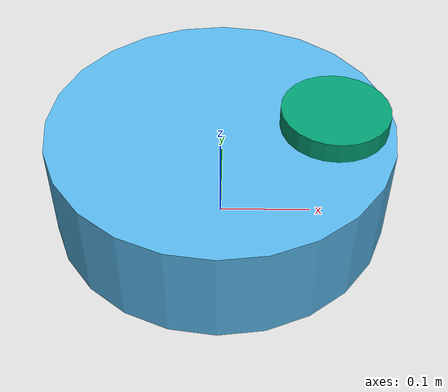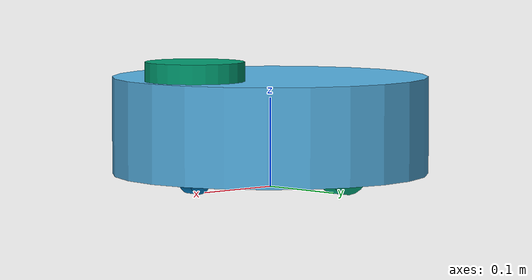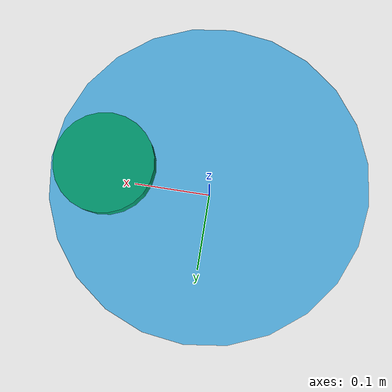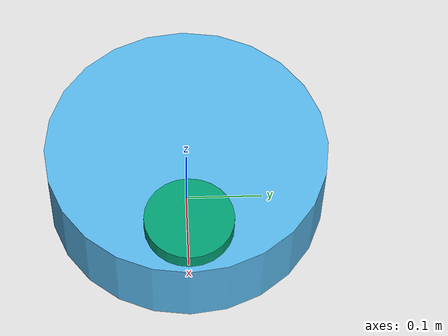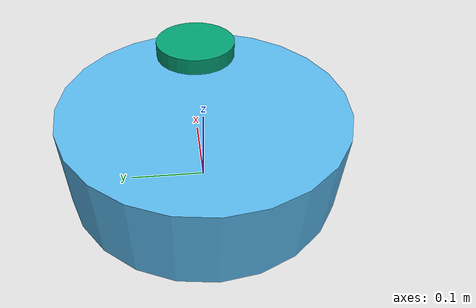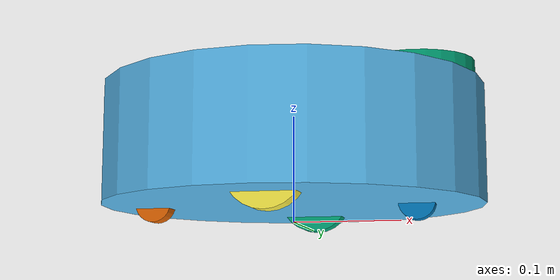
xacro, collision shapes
<?xml version="1.0"?>
<robot name="kobuki_standalone"
       xmlns:sensor="http://playerstage.sourceforge.net/gazebo/xmlschema/#sensor"
       xmlns:controller="http://playerstage.sourceforge.net/gazebo/xmlschema/#controller"
       xmlns:interface="http://playerstage.sourceforge.net/gazebo/xmlschema/#interface"
       xmlns:xacro="http://ros.org/wiki/xacro">

  <!-- Defines the kobuki component tag. -->
  <xacro:include filename="$(find multi_robot_scenario)/launch/includes/urdf/kobuki.urdf.xacro" />
  <kobuki/>
</robot>

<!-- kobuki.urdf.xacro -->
<robot name="kobuki" xmlns:xacro="http://ros.org/wiki/xacro">
  <xacro:include filename="$(find multi_robot_scenario)/launch/includes/urdf/common_properties.urdf.xacro"/>
  <xacro:include filename="$(find multi_robot_scenario)/launch/includes/urdf/kobuki_gazebo.urdf.xacro"/>

  <!-- Kobuki -->
  <xacro:macro name="kobuki">
    <link name="base_footprint"/>
    <joint name="base_joint" type="fixed">
      <origin xyz="0 0 0.0102" rpy="0 0 0" />
      <parent link="base_footprint"/>
      <child link="base_link" />
    </joint>
    <link name="base_link">
      <visual>
        <geometry>
          <!-- new mesh -->
          <mesh filename="package://multi_robot_scenario/launch/includes/meshes/main_body.dae" />
        </geometry>
        <origin xyz="0.001 0 0.05199" rpy="0 0 0"/>
      </visual>
      <collision>
        <geometry>
          <cylinder length="0.10938" radius="0.178"/>
        </geometry>
        <surface>
          <contact>
            <ode/>
          </contact>
          <friction>
            <ode/>
          </friction>
        </surface>
        <origin xyz="0.0 0 0.05949" rpy="0 0 0"/>
      </collision>
      <inertial>
        <!-- COM experimentally determined -->
        <origin xyz="0.01 0 0"/>
        <mass value="2.4"/> <!-- 2.4/2.6 kg for small/big battery pack -->
        <inertia ixx="0.019995" ixy="0.0" ixz="0.0"
                 iyy="0.019995" iyz="0.0"
                 izz="0.03675" />
      </inertial>
    </link>

    <joint name="wheel_left_joint" type="continuous">
      <parent link="base_link"/>
      <child link="wheel_left_link"/>
      <origin xyz="0.00 0.115 0.0250" rpy="-1.57 0 0"/>
      <axis xyz="0 0 1"/>
    </joint>
    <link name="wheel_left_link">
      <visual>
        <geometry>
          <mesh filename="package://multi_robot_scenario/launch/includes/meshes/wheel.dae"/>
        </geometry>
        <origin xyz="0 0 0" rpy="0 0 0"/>
      </visual>
      <collision>
        <geometry>
          <cylinder length="0.0206" radius="0.0352"/>
        </geometry>
        <origin rpy="0 0 0" xyz="0 0 0"/>
      </collision>
      <inertial>
        <mass value="0.01" />
        <origin xyz="0 0 0" />
        <inertia ixx="0.001" ixy="0.0" ixz="0.0"
                 iyy="0.001" iyz="0.0"
                 izz="0.001" />
      </inertial>
    </link>

    <joint name="wheel_right_joint" type="continuous">
      <parent link="base_link"/>
      <child link="wheel_right_link"/>
      <origin xyz="0.00 -0.115 0.0250" rpy="-1.57 0 0"/>
      <axis xyz="0 0 1"/>
    </joint>
    <link name="wheel_right_link">
      <visual>
        <geometry>
          <mesh filename="package://multi_robot_scenario/launch/includes/meshes/wheel.dae"/>
        </geometry>
        <origin xyz="0 0 0" rpy="0 0 0"/>
      </visual>
      <collision>
        <geometry>
          <cylinder length="0.0206" radius="0.0350"/>
        </geometry>
        <origin rpy="0 0 0" xyz="0 0 0"/>
      </collision>
      <inertial>
        <mass value="0.01" />
        <origin xyz="0 0 0" />
        <inertia ixx="0.001" ixy="0.0" ixz="0.0"
                 iyy="0.001" iyz="0.0"
                 izz="0.001" />
      </inertial>
    </link>

    <joint name="caster_front_joint" type="fixed">
      <parent link="base_link"/>
      <child link="caster_front_link"/>
      <origin xyz="0.115 0.0 0.007" rpy="${-M_PI/2} 0 0"/>
    </joint>
    <link name="caster_front_link">
      <collision>
        <geometry>
          <cylinder length="0.0176" radius="0.017"/>
        </geometry>
        <origin rpy="0 0 0" xyz="0 0 0"/>
      </collision>
      <inertial>
        <mass value="0.01" />
        <origin xyz="0 0 0" />
        <inertia ixx="0.001" ixy="0.0" ixz="0.0"
                 iyy="0.001" iyz="0.0"
                 izz="0.001" />
      </inertial>
    </link>

    <joint name="caster_back_joint" type="fixed">
      <parent link="base_link"/>
      <child link="caster_back_link"/>
      <origin xyz="-0.135 0.0 0.009" rpy="${-M_PI/2} 0 0"/>
    </joint>
    <link name="caster_back_link">
      <collision>
        <geometry>
          <cylinder length="0.0176" radius="0.017"/>
        </geometry>
        <origin rpy="0 0 0" xyz="0 0 0"/>
      </collision>
      <inertial>
        <mass value="0.01" />
        <origin xyz="0 0 0" />
        <inertia ixx="0.001" ixy="0.0" ixz="0.0"
                 iyy="0.001" iyz="0.0"
                 izz="0.001" />
      </inertial>
    </link>

    <!-- Kobuki's sensors -->
    <joint name="gyro_joint" type="fixed">
      <axis xyz="0 1 0"/>
      <origin xyz="0.056 0.062 0.0202" rpy="0 0 0"/>
      <parent link="base_link"/>
      <child link="gyro_link"/>
    </joint>
    <link name="gyro_link">
      <inertial>
        <mass value="0.001"/>
        <origin xyz="0 0 0" rpy="0 0 0"/>
        <inertia ixx="0.0001" ixy="0" ixz="0"
                 iyy="0.000001" iyz="0"
                 izz="0.0001"/>
      </inertial>
    </link>

    <joint name="cliff_sensor_left_joint" type="fixed">
      <origin xyz="0.08734 0.13601 0.0214" rpy="0 ${M_PI/2} 0" />
      <parent link="base_link"/>
      <child link="cliff_sensor_left_link" />
    </joint>
    <link name="cliff_sensor_left_link">
      <inertial>
        <mass value="0.0001" />
        <origin xyz="0 0 0" />
        <inertia ixx="0.0001" ixy="0.0" ixz="0.0"
                 iyy="0.0001" iyz="0.0"
                 izz="0.0001" />
      </inertial>
    </link>

    <joint name="cliff_sensor_right_joint" type="fixed">
      <origin xyz="0.085 -0.13601 0.0214" rpy="0 ${M_PI/2} 0" />
      <parent link="base_link"/>
      <child link="cliff_sensor_right_link" />
    </joint>
    <link name="cliff_sensor_right_link">
      <inertial>
        <mass value="0.0001" />
        <origin xyz="0 0 0" />
        <inertia ixx="0.0001" ixy="0.0" ixz="0.0"
                 iyy="0.0001" iyz="0.0"
                 izz="0.0001" />
      </inertial>
    </link>

    <joint name="cliff_sensor_front_joint" type="fixed">
      <origin xyz="0.156 0.00 0.0214" rpy="0 ${M_PI/2} 0" />
      <parent link="base_link"/>
      <child link="cliff_sensor_front_link" />
    </joint>
    <link name="cliff_sensor_front_link">
      <inertial>
        <mass value="0.0001" />
        <origin xyz="0 0 0" />
        <inertia ixx="0.0001" ixy="0.0" ixz="0.0"
                 iyy="0.0001" iyz="0.0"
                 izz="0.0001" />
      </inertial>
    </link>

    <joint name="laser_joint" type="fixed">
    <origin xyz=".115 0 0.12" rpy="0 0 0" />
    <parent link="base_link" />
    <child link="base_laser_link" />
    </joint>

    <link name="base_laser_link">

    <collision>
      <origin xyz="0 0 0" rpy="0 0 0"/>
      <geometry>
        <cylinder length="0.0315" radius="0.055"/>
      </geometry>
    </collision>

    <visual>
      <origin xyz="0 0 0" rpy="0 0 0"/>
      <geometry>
        <mesh filename="package://turtlebot3_description/meshes/sensors/lds.stl" scale="0.001 0.001 0.001"/>
      </geometry>
    </visual>

    <inertial>
      <mass value="1e-5" />
      <origin xyz="0 0 1" rpy="0 0 0"/>
      <inertia ixx="1e-6" ixy="0" ixz="0" iyy="1e-6" iyz="0" izz="1e-6" />
    </inertial>
   </link>

  <joint name="camera_joint" type="fixed">
    <origin xyz="0.064 -0.065 0.094" rpy="0 0 0"/>
    <parent link="base_link"/>
    <child link="camera_link"/>
  </joint>

  <link name="camera_link">
    <visual>
     <origin xyz="0 0 0" rpy="1.57 0 1.57"/>
      <geometry>
       <mesh filename="package://multi_robot_scenario/launch/includes/meshes/r200.dae" />
      </geometry>
    </visual>
    <collision>
      <origin xyz="0.003 0.065 0.007" rpy="0 0 0"/>
      <geometry>
        <box size="0.012 0.132 0.020"/>
      </geometry>
    </collision>
  </link>

  <joint name="bumper_joint" type="fixed">
    <origin xyz="0 0 0" rpy="0 0 0"/>
    <parent link="base_link"/>
    <child link="bumper_link"/>
  </joint>

  <link name="bumper_link">
    <visual>
      <geometry>
       <!-- new mesh -->
       <mesh filename="package://multi_robot_scenario/launch/includes/meshes/main_body.dae" />
      </geometry>
      <origin xyz="0.001 0 0.05199" rpy="0 0 0"/>
    </visual>
    <collision name='base_footprint_fixed_joint_lump__bumper_link_collision_1'>
      <origin xyz="0.0 0 0.05949" rpy="0 0 0"/>
      <geometry>
        <cylinder length="0.10938" radius="0.178"/>
      </geometry>
      <surface>
        <contact>
          <ode/>
        </contact>
        <friction>
          <ode/>
        </friction>
      </surface>
    </collision>
    <inertial>
      <mass value="2.4"/>
      <origin xyz="0.01 0 0" rpy="0 0 0"/>
      <inertia ixx="0.019995" ixy="0.0" ixz="0.0"
                 iyy="0.019995" iyz="0.0"
                 izz="0.03675" />
    </inertial>
  </link>

    <!-- Kobuki Gazebo simulation details -->
    <kobuki_sim/>

  </xacro:macro>
</robot>
